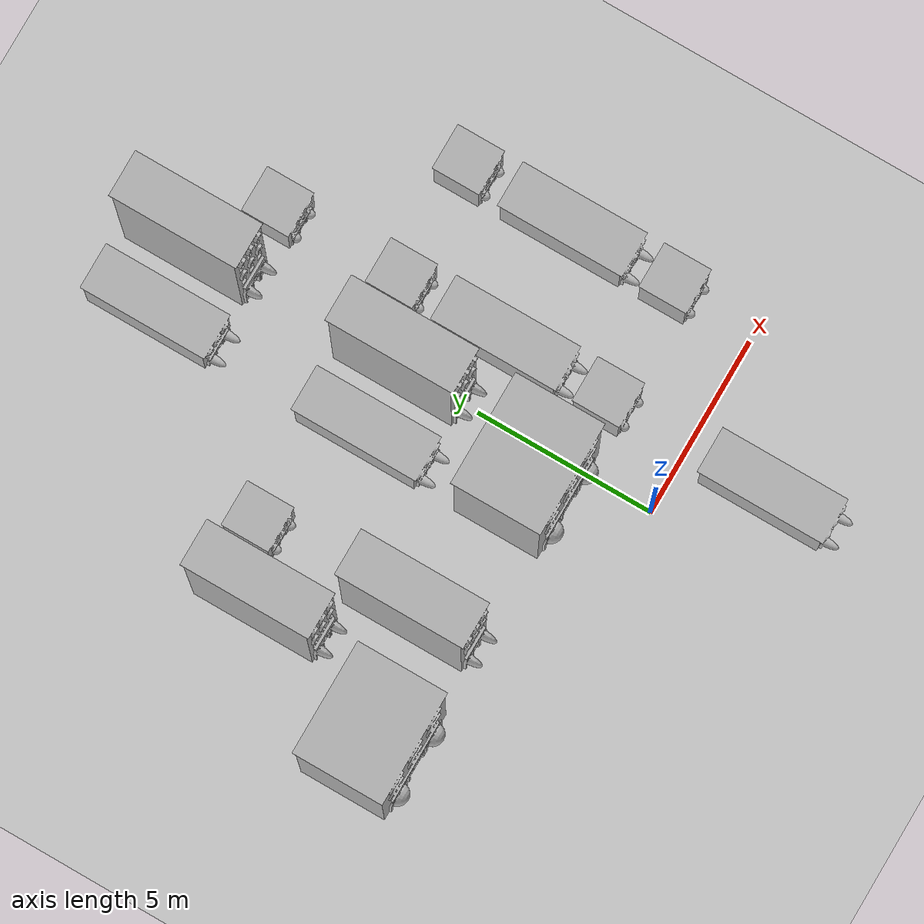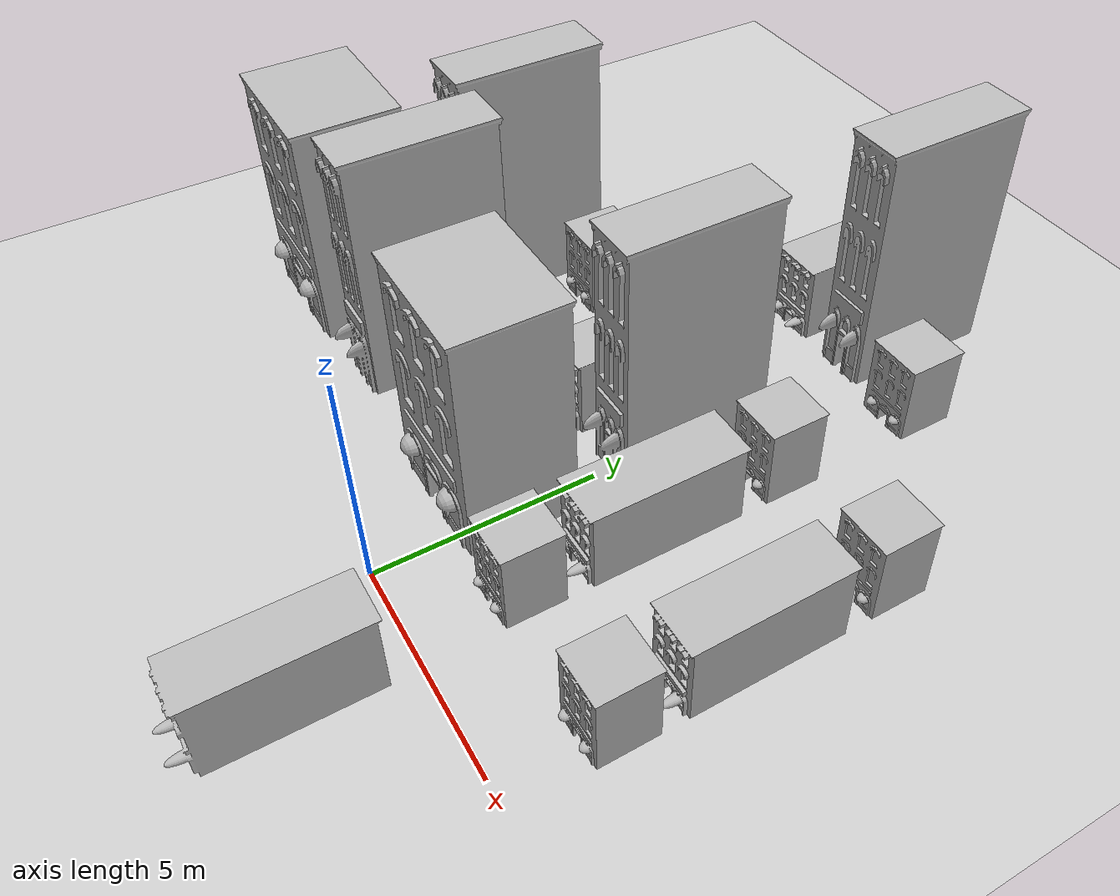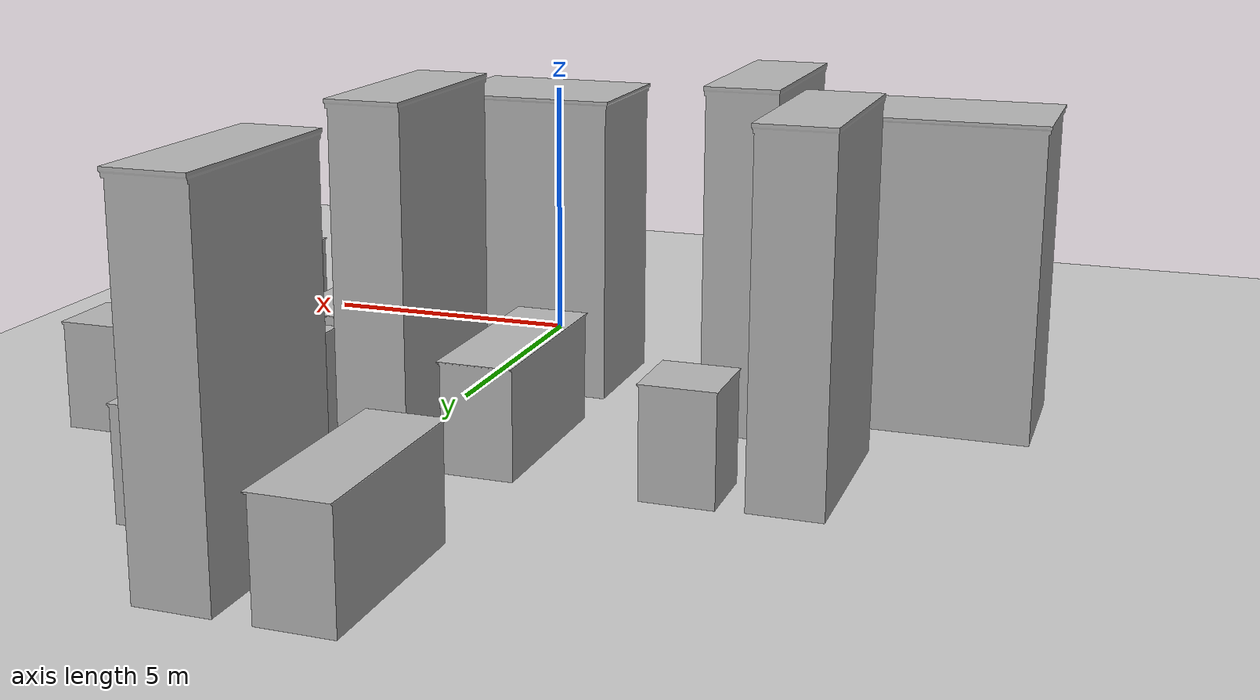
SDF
<sdf version="1.4">
 <world name="trial_1_world">
  <include><uri>model://ground_plane</uri></include>
  <include><uri>model://sun</uri></include>
  <include><uri>model://office</uri><name>building1</name><pose>1.85 2.34 0.0 0 0 0</pose></include>
  <include><uri>model://office_1</uri><name>building2</name><pose>1.85 5.29 0.0 0 0 0</pose></include>
  <include><uri>model://office</uri><name>building3</name><pose>1.85 8.29 0.0 0 0 0</pose></include>
  <include><uri>model://office_2</uri><name>building4</name><pose>0 7.14 0.0 0 0 0</pose></include>
  <include><uri>model://office_1</uri><name>building5</name><pose>-1.85 7.14 0.0 0 0 0</pose></include>
  <include><uri>model://office_3</uri><name>building6</name><pose>-0.92 3.08 0.0 0 0 0</pose></include>
  <include><uri>model://office_1</uri><name>building21</name><pose>1.87 -2.35 0.0 0 0 0</pose></include>
  <include><uri>model://office</uri><name>building22</name><pose>-5.21 8.29 0.0 0 0 0</pose></include>
  <include><uri>model://office_2</uri><name>building23</name><pose>-6.90 7.14 0.0 0 0 0</pose></include>
  <include><uri>model://office_3</uri><name>building24</name><pose>-8.50 3.08 0.0 0 0 0</pose></include>
  <include><uri>model://office_2</uri><name>building25</name><pose>-5.23 3.808 0.0 0 0 0</pose></include>
  <include><uri>model://office</uri><name>building31</name><pose>1.85 11.86 0.0 0 0 0</pose></include>
  <include><uri>model://office_2</uri><name>building32</name><pose>0 13.22 0.0 0 0 0</pose></include>
  <include><uri>model://office_1</uri><name>building33</name><pose>-1.85 13.22 0.0 0 0 0</pose></include>
  <include><uri>model://office</uri><name>building41</name><pose>5.16 2.34 0.0 0 0 0</pose></include>
  <include><uri>model://office_1</uri><name>building42</name><pose>5.16 5.29 0.0 0 0 0</pose></include>
  <include><uri>model://office</uri><name>building43</name><pose>5.16 8.29 0.0 0 0 0</pose></include>
 </world>
</sdf>

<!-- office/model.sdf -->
<sdf version="1.6">
  <model name="office">
<pose>2.1 1.8 0.2 0 0 0</pose>
    <static>true</static>
    <link name="link">
      <collision name="collision">
        <pose>1.8 1.8 0.2 0 0 0</pose>
        <geometry>
          <box>
            <size>0.0006844012958 0.0005431646878 0.0013924872736</size>
          </box>
        </geometry>
      </collision>
      <visual name="visual">
        <geometry>
	<mesh>
            <uri>model://office/meshes/law_office.dae</uri>
<scale>0.1844012958 0.2431646878 0.13924872736</scale>
          </mesh>
        </geometry>
      </visual>
    </link>
  </model>
</sdf>

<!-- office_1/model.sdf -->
<sdf version="1.6">
  <model name="office_1">
<pose>2.1 1.8 0.2 0 0 0</pose>
    <static>true</static>
    <link name="link">
      <collision name="collision">
        <pose>1.8 1.8 0.2 0 0 0</pose>
        <geometry>
          <box>
            <size>0.0006844012958 0.0005431646878 0.0013924872736</size>
          </box>
        </geometry>
      </collision>
      <visual name="visual">
        <geometry>
	<mesh>
            <uri>model://office_1/meshes/law_office.dae</uri>
<scale>0.1844012958 0.6431646878 0.13924872736</scale>
          </mesh>
        </geometry>
      </visual>
    </link>
  </model>
</sdf>

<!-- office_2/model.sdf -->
<sdf version="1.6">
  <model name="office_2">
<pose>2.1 1.8 0.2 0 0 0</pose>
    <static>true</static>
    <link name="link">
      <collision name="collision">
        <pose>1.8 1.8 0.2 0 0 0</pose>
        <geometry>
          <box>
            <size>0.0006844012958 0.0005431646878 0.0013924872736</size>
          </box>
        </geometry>
      </collision>
      <visual name="visual">
        <geometry>
	<mesh>
            <uri>model://office_2/meshes/law_office.dae</uri>
<scale>0.1844012958 0.6431646878 0.43924872736</scale>
          </mesh>
        </geometry>
      </visual>
    </link>
  </model>
</sdf>

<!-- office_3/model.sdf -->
<sdf version="1.6">
  <model name="office_3">
<pose>2.1 1.8 0.2 0 0 0</pose>
    <static>true</static>
    <link name="link">
      <collision name="collision">
        <pose>1.8 1.8 0.2 0 0 0</pose>
        <geometry>
          <box>
            <size>0.0006844012958 0.0005431646878 0.0013924872736</size>
          </box>
        </geometry>
      </collision>
      <visual name="visual">
        <geometry>
	<mesh>
            <uri>model://office_3/meshes/law_office.dae</uri>
<scale>0.444012958 0.4440646878 0.3924872736</scale>
          </mesh>
        </geometry>
      </visual>
    </link>
  </model>
</sdf>
